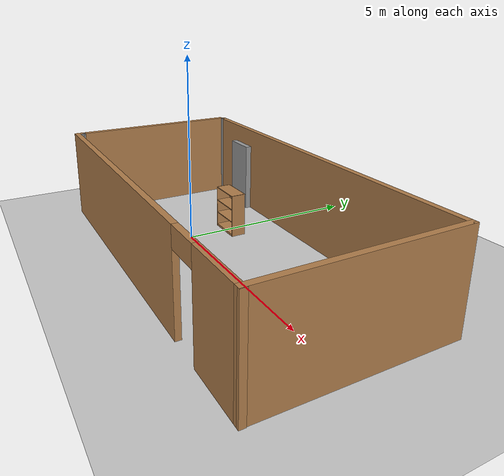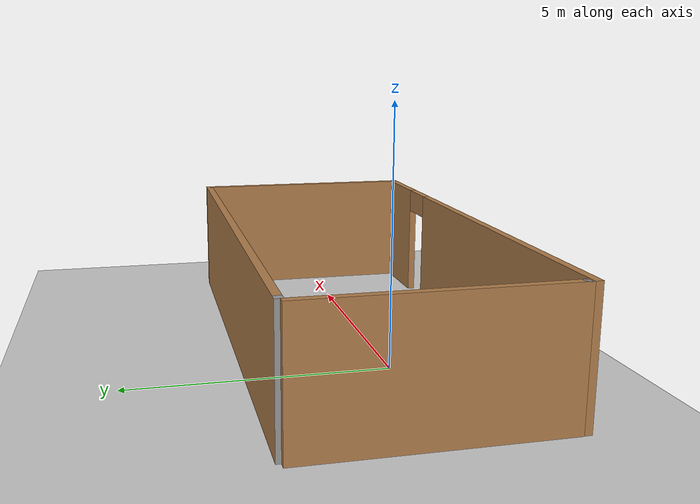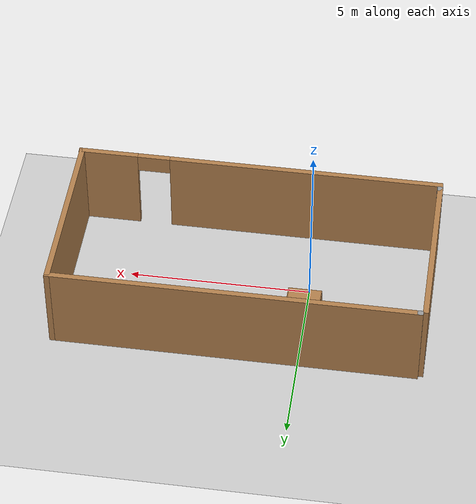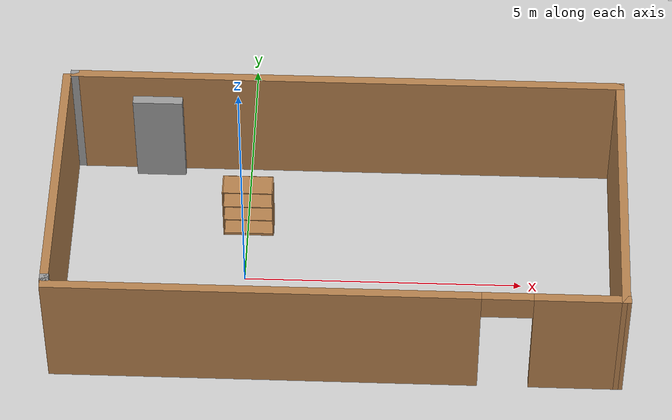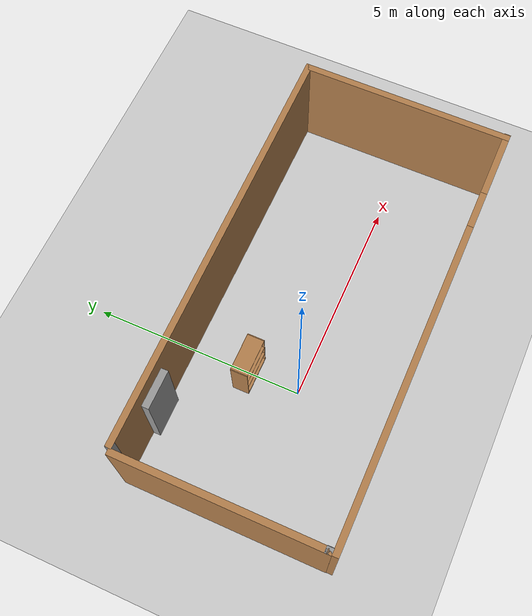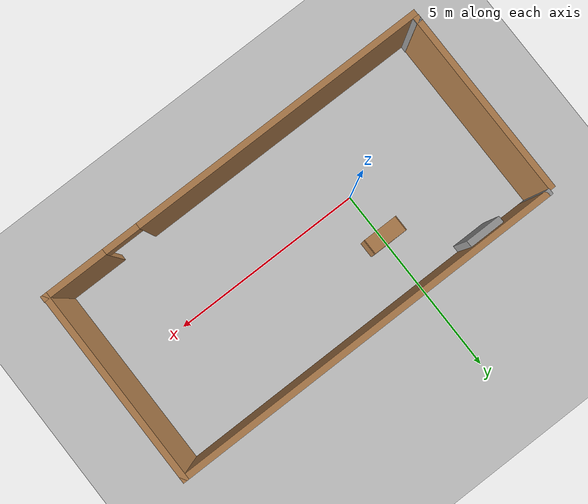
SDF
<sdf version="1.7">
 <world name="default">
  <light name="sun" type="directional">
   <pose>0 0 10 0 -0 0</pose>
   <diffuse>0.8 0.8 0.8 1</diffuse>
   <specular>0.2 0.2 0.2 1</specular>
   <attenuation>
    <range>1000</range>
    <constant>0.9</constant>
    <linear>0.01</linear>
    <quadratic>0.001</quadratic>
   </attenuation>
   <direction>-0.5 0.1 -0.9</direction>
   <spot><inner_angle>0</inner_angle><outer_angle>0</outer_angle><falloff>0</falloff></spot>
  </light>
  <model name="ground_plane">
   <static>1</static>
   <link name="link">
    <collision name="collision">
     <geometry><plane><normal>0 0 1</normal><size>100 100</size></plane></geometry>
     <surface><friction><ode><mu>100</mu><mu2>50</mu2></ode></friction></surface>
    </collision>
    <visual name="visual">
     <cast_shadows>0</cast_shadows>
     <geometry><plane><normal>0 0 1</normal><size>100 100</size></plane></geometry>
     <material>
      <script><uri>file://media/materials/scripts/gazebo.material</uri><name>Gazebo/Grey</name></script>
     </material>
    </visual>
   </link>
  </model>
  <gravity>0 0 -9.8</gravity>
  <magnetic_field>6e-06 2.3e-05 -4.2e-05</magnetic_field>
  <atmosphere type="adiabatic"/>
  <physics type="ode">
   <max_step_size>0.001</max_step_size>
   <real_time_factor>1</real_time_factor>
   <real_time_update_rate>1000</real_time_update_rate>
  </physics>
  <scene><ambient>0.4 0.4 0.4 1</ambient><background>0.7 0.7 0.7 1</background><shadows>1</shadows></scene>
  <audio><device>default</device></audio>
  <spherical_coordinates>
   <surface_model>EARTH_WGS84</surface_model>
   <latitude_deg>0</latitude_deg>
   <longitude_deg>0</longitude_deg>
   <elevation>0</elevation>
   <heading_deg>0</heading_deg>
  </spherical_coordinates>
  <model name="bookshelf">
   <static>1</static>
   <link name="link">
    <inertial><mass>1</mass></inertial>
    <collision name="back">
     <pose>0 0.005 0.6 0 -0 0</pose>
     <geometry><box><size>0.9 0.01 1.2</size></box></geometry>
    </collision>
    <visual name="visual1">
     <pose>0 0.005 0.6 0 -0 0</pose>
     <geometry><box><size>0.9 0.01 1.2</size></box></geometry>
     <material>
      <script><uri>file://media/materials/scripts/gazebo.material</uri><name>Gazebo/Wood</name></script>
     </material>
    </visual>
    <collision name="left_side">
     <pose>0.45 -0.195 0.6 0 -0 0</pose>
     <geometry><box><size>0.02 0.4 1.2</size></box></geometry>
    </collision>
    <visual name="visual2">
     <pose>0.45 -0.195 0.6 0 -0 0</pose>
     <geometry><box><size>0.02 0.4 1.2</size></box></geometry>
     <material>
      <script><uri>file://media/materials/scripts/gazebo.material</uri><name>Gazebo/Wood</name></script>
     </material>
    </visual>
    <collision name="right_side">
     <pose>-0.45 -0.195 0.6 0 -0 0</pose>
     <geometry><box><size>0.02 0.4 1.2</size></box></geometry>
    </collision>
    <visual name="visual3">
     <pose>-0.45 -0.195 0.6 0 -0 0</pose>
     <geometry><box><size>0.02 0.4 1.2</size></box></geometry>
     <material>
      <script><uri>file://media/materials/scripts/gazebo.material</uri><name>Gazebo/Wood</name></script>
     </material>
    </visual>
    <collision name="bottom">
     <pose>0 -0.195 0.03 0 -0 0</pose>
     <geometry><box><size>0.88 0.4 0.06</size></box></geometry>
    </collision>
    <visual name="visual4">
     <pose>0 -0.195 0.03 0 -0 0</pose>
     <geometry><box><size>0.88 0.4 0.06</size></box></geometry>
     <material>
      <script><uri>file://media/materials/scripts/gazebo.material</uri><name>Gazebo/Wood</name></script>
     </material>
    </visual>
    <collision name="top">
     <pose>0 -0.195 1.19 0 -0 0</pose>
     <geometry><box><size>0.88 0.4 0.02</size></box></geometry>
    </collision>
    <visual name="visual5">
     <pose>0 -0.195 1.19 0 -0 0</pose>
     <geometry><box><size>0.88 0.4 0.02</size></box></geometry>
     <material>
      <script><uri>file://media/materials/scripts/gazebo.material</uri><name>Gazebo/Wood</name></script>
     </material>
    </visual>
    <collision name="low_shelf">
     <pose>0 -0.195 0.43 0 -0 0</pose>
     <geometry><box><size>0.88 0.4 0.02</size></box></geometry>
    </collision>
    <visual name="visual6">
     <pose>0 -0.195 0.43 0 -0 0</pose>
     <geometry><box><size>0.88 0.4 0.02</size></box></geometry>
     <material>
      <script><uri>file://media/materials/scripts/gazebo.material</uri><name>Gazebo/Wood</name></script>
     </material>
    </visual>
    <collision name="high_shelf">
     <pose>0 -0.195 0.8 0 -0 0</pose>
     <geometry><box><size>0.88 0.4 0.02</size></box></geometry>
    </collision>
    <visual name="visual7">
     <pose>0 -0.195 0.8 0 -0 0</pose>
     <geometry><box><size>0.88 0.4 0.02</size></box></geometry>
     <material>
      <script><uri>file://media/materials/scripts/gazebo.material</uri><name>Gazebo/Wood</name></script>
     </material>
    </visual>
   </link>
   <pose>0.014538 1.41986 0 0 -0 0</pose>
  </model>
  <model name="test">
   <pose>1.70023 0.24387 0 0 -0 0</pose>
   <link name="Door_1">
    <collision name="Door_1_Collision">
     <geometry><box><size>0.9 0.17 2</size></box></geometry>
     <pose>0 0 1 0 -0 0</pose>
    </collision>
    <visual name="Door_1_Visual">
     <pose>0 0 1 0 -0 0</pose>
     <geometry><box><size>0.9 0.17 2</size></box></geometry>
     <material>
      <script><uri>file://media/materials/scripts/gazebo.material</uri><name>Gazebo/Grey</name></script>
     </material>
    </visual>
    <pose>-3.37243 2.26635 0 0 -0 0</pose>
   </link>
   <link name="Wall_10">
    <collision name="Wall_10_Collision">
     <geometry><box><size>0.16 0.15 2.5</size></box></geometry>
     <pose>0 0 1.25 0 -0 0</pose>
    </collision>
    <visual name="Wall_10_Visual">
     <pose>0 0 1.25 0 -0 0</pose>
     <geometry><box><size>0.16 0.15 2.5</size></box></geometry>
     <material>
      <script><uri>file://media/materials/scripts/gazebo.material</uri><name>Gazebo/Grey</name></script>
      <ambient>1 1 1 1</ambient>
     </material>
     <meta><layer>0</layer></meta>
    </visual>
    <pose>-4.9941 -2.26705 0 0 -0 3.14159</pose>
   </link>
   <link name="Wall_12">
    <collision name="Wall_12_Collision">
     <geometry><box><size>5 0.15 2.5</size></box></geometry>
     <pose>0 0 1.25 0 -0 0</pose>
    </collision>
    <visual name="Wall_12_Visual">
     <pose>0 0 1.25 0 -0 0</pose>
     <geometry><box><size>5 0.15 2.5</size></box></geometry>
     <material>
      <script><uri>file://media/materials/scripts/gazebo.material</uri><name>Gazebo/Wood</name></script>
      <ambient>1 1 1 1</ambient>
     </material>
     <meta><layer>0</layer></meta>
    </visual>
    <pose>4.98577 5e-05 0 0 -0 -1.5708</pose>
   </link>
   <link name="Wall_13">
    <pose>0.004924 -2.41834 0 0 -0 3.14027</pose>
    <visual name="Wall_13_Visual_0">
     <pose>-4.23823 0 1.25 0 -0 0</pose>
     <geometry><box><size>1.6617 0.15 2.5</size></box></geometry>
     <material>
      <script><uri>file://media/materials/scripts/gazebo.material</uri><name>Gazebo/Wood</name></script>
      <ambient>1 1 1 1</ambient>
     </material>
     <meta><layer>0</layer></meta>
    </visual>
    <collision name="Wall_13_Collision_0">
     <geometry><box><size>1.6617 0.15 2.5</size></box></geometry>
     <pose>-4.23823 0 1.25 0 -0 0</pose>
    </collision>
    <visual name="Wall_13_Visual_1">
     <pose>1.28085 0 1.25 0 -0 0</pose>
     <geometry><box><size>7.57646 0.15 2.5</size></box></geometry>
     <material>
      <script><uri>file://media/materials/scripts/gazebo.material</uri><name>Gazebo/Wood</name></script>
      <ambient>1 1 1 1</ambient>
     </material>
     <meta><layer>0</layer></meta>
    </visual>
    <collision name="Wall_13_Collision_1">
     <geometry><box><size>7.57646 0.15 2.5</size></box></geometry>
     <pose>1.28085 0 1.25 0 -0 0</pose>
    </collision>
    <visual name="Wall_13_Visual_2">
     <pose>-2.95738 0 2.25 0 -0 0</pose>
     <geometry><box><size>0.9 0.15 0.5</size></box></geometry>
     <material>
      <script><uri>file://media/materials/scripts/gazebo.material</uri><name>Gazebo/Wood</name></script>
      <ambient>1 1 1 1</ambient>
     </material>
     <meta><layer>0</layer></meta>
    </visual>
    <collision name="Wall_13_Collision_2">
     <geometry><box><size>0.9 0.15 0.5</size></box></geometry>
     <pose>-2.95738 0 2.25 0 -0 0</pose>
    </collision>
   </link>
   <link name="Wall_16">
    <collision name="Wall_16_Collision">
     <geometry><box><size>10 0.15 2.5</size></box></geometry>
     <pose>0 0 1.25 0 -0 0</pose>
    </collision>
    <visual name="Wall_16_Visual">
     <pose>0 0 1.25 0 -0 0</pose>
     <geometry><box><size>10 0.15 2.5</size></box></geometry>
     <material>
      <script><uri>file://media/materials/scripts/gazebo.material</uri><name>Gazebo/Wood</name></script>
      <ambient>1 1 1 1</ambient>
     </material>
     <meta><layer>0</layer></meta>
    </visual>
    <pose>0.060774 2.42505 0 0 -0 3.14159</pose>
   </link>
   <link name="Wall_17">
    <collision name="Wall_17_Collision">
     <geometry><box><size>0.15 0.15 2.5</size></box></geometry>
     <pose>0 0 1.25 0 -0 0</pose>
    </collision>
    <visual name="Wall_17_Visual">
     <pose>0 0 1.25 0 -0 0</pose>
     <geometry><box><size>0.15 0.15 2.5</size></box></geometry>
     <material>
      <script><uri>file://media/materials/scripts/gazebo.material</uri><name>Gazebo/Grey</name></script>
      <ambient>1 1 1 1</ambient>
     </material>
     <meta><layer>0</layer></meta>
    </visual>
    <pose>-4.86423 2.42505 0 0 -0 0</pose>
   </link>
   <link name="Wall_18">
    <collision name="Wall_18_Collision">
     <geometry><box><size>0.15 0.15 2.5</size></box></geometry>
     <pose>0 0 1.25 0 -0 0</pose>
    </collision>
    <visual name="Wall_18_Visual">
     <pose>0 0 1.25 0 -0 0</pose>
     <geometry><box><size>0.15 0.15 2.5</size></box></geometry>
     <material>
      <script><uri>file://media/materials/scripts/gazebo.material</uri><name>Gazebo/Grey</name></script>
      <ambient>1 1 1 1</ambient>
     </material>
     <meta><layer>0</layer></meta>
    </visual>
    <pose>-4.86423 2.42505 0 0 -0 0</pose>
   </link>
   <link name="Wall_6">
    <collision name="Wall_6_Collision">
     <geometry><box><size>4.75 0.15 2.5</size></box></geometry>
     <pose>0 0 1.25 0 -0 0</pose>
    </collision>
    <visual name="Wall_6_Visual">
     <pose>0 0 1.25 0 -0 0</pose>
     <geometry><box><size>4.75 0.15 2.5</size></box></geometry>
     <material>
      <script><uri>file://media/materials/scripts/gazebo.material</uri><name>Gazebo/Wood</name></script>
      <ambient>1 1 1 1</ambient>
     </material>
     <meta><layer>0</layer></meta>
    </visual>
    <pose>-4.9991 0.03295 0 0 -0 -1.5708</pose>
   </link>
   <link name="Wall_7">
    <collision name="Wall_7_Collision">
     <geometry><box><size>0.15 0.15 2.5</size></box></geometry>
     <pose>0 0 1.25 0 -0 0</pose>
    </collision>
    <visual name="Wall_7_Visual">
     <pose>0 0 1.25 0 -0 0</pose>
     <geometry><box><size>0.15 0.15 2.5</size></box></geometry>
     <material>
      <script><uri>file://media/materials/scripts/gazebo.material</uri><name>Gazebo/Grey</name></script>
      <ambient>1 1 1 1</ambient>
     </material>
     <meta><layer>0</layer></meta>
    </visual>
    <pose>-4.9991 -2.26705 0 0 -0 0</pose>
   </link>
   <link name="Wall_8">
    <collision name="Wall_8_Collision">
     <geometry><box><size>0.15 0.15 2.5</size></box></geometry>
     <pose>0 0 1.25 0 -0 0</pose>
    </collision>
    <visual name="Wall_8_Visual">
     <pose>0 0 1.25 0 -0 0</pose>
     <geometry><box><size>0.15 0.15 2.5</size></box></geometry>
     <material>
      <script><uri>file://media/materials/scripts/gazebo.material</uri><name>Gazebo/Grey</name></script>
      <ambient>1 1 1 1</ambient>
     </material>
     <meta><layer>0</layer></meta>
    </visual>
    <pose>-4.9991 -2.26705 0 0 -0 0</pose>
   </link>
   <link name="Wall_9">
    <collision name="Wall_9_Collision">
     <geometry><box><size>0.16 0.15 2.5</size></box></geometry>
     <pose>0 0 1.25 0 -0 0</pose>
    </collision>
    <visual name="Wall_9_Visual">
     <pose>0 0 1.25 0 -0 0</pose>
     <geometry><box><size>0.16 0.15 2.5</size></box></geometry>
     <material>
      <script><uri>file://media/materials/scripts/gazebo.material</uri><name>Gazebo/Grey</name></script>
      <ambient>1 1 1 1</ambient>
     </material>
     <meta><layer>0</layer></meta>
    </visual>
    <pose>-4.9941 -2.26705 0 0 -0 0</pose>
   </link>
   <static>1</static>
  </model>
 </world>
</sdf>
